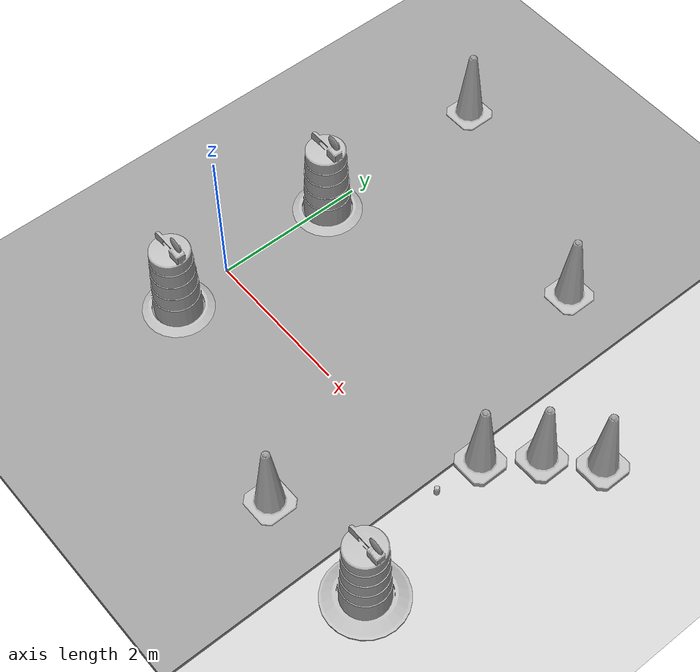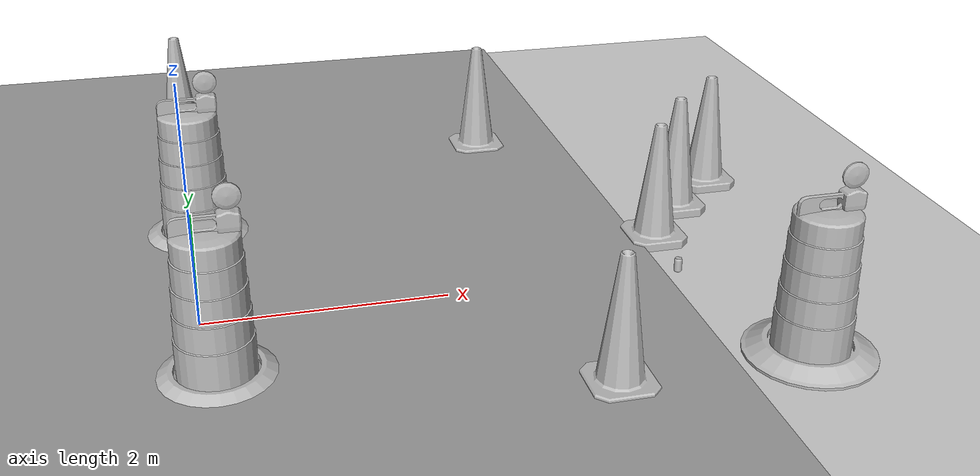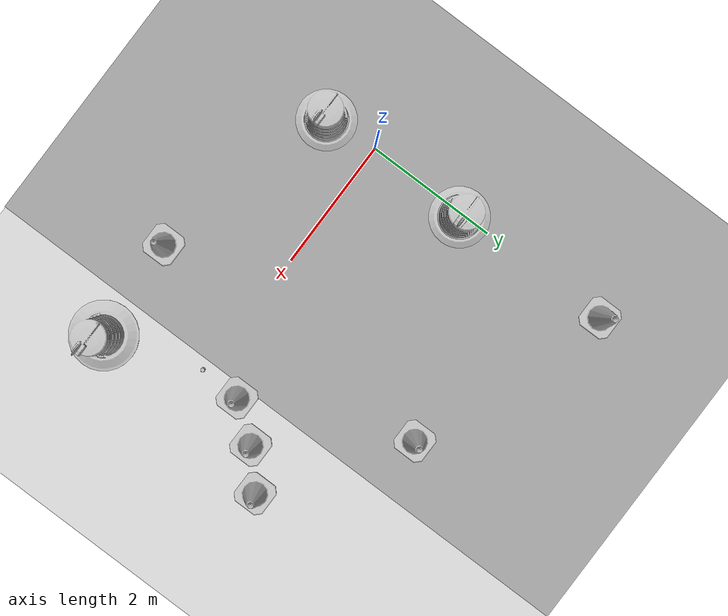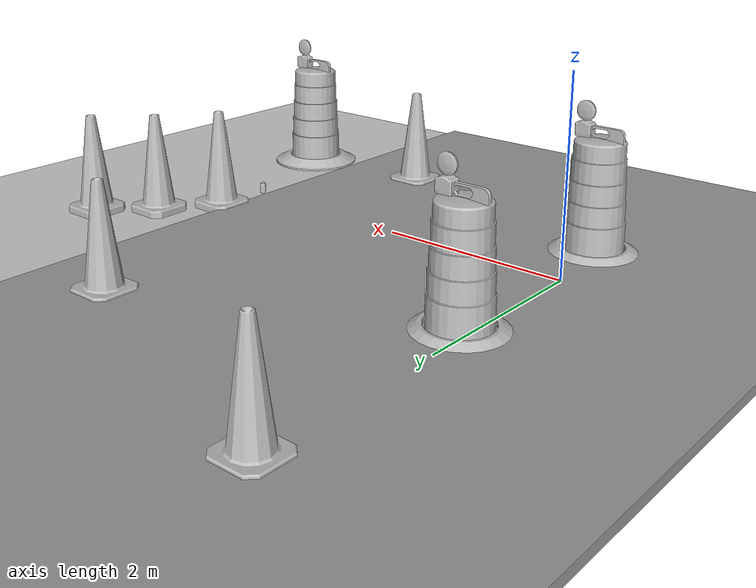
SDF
<sdf version="1.7">
 <world name="default">
  <light name="sun" type="directional">
   <pose>0 0 10 0 -0 0</pose>
   <diffuse>0.8 0.8 0.8 1</diffuse>
   <specular>0.2 0.2 0.2 1</specular>
   <attenuation>
    <range>1000</range>
    <constant>0.9</constant>
    <linear>0.01</linear>
    <quadratic>0.001</quadratic>
   </attenuation>
   <direction>-0.5 0.1 -0.9</direction>
   <spot><inner_angle>0</inner_angle><outer_angle>0</outer_angle><falloff>0</falloff></spot>
  </light>
  <model name="ground_plane">
   <static>1</static>
   <link name="link">
    <collision name="collision">
     <geometry><plane><normal>0 0 1</normal><size>100 100</size></plane></geometry>
     <surface>
      <contact><collide_bitmask>65535</collide_bitmask></contact>
      <friction><ode><mu>100</mu><mu2>50</mu2></ode></friction>
     </surface>
    </collision>
    <visual name="visual">
     <cast_shadows>0</cast_shadows>
     <geometry><plane><normal>0 0 1</normal><size>100 100</size></plane></geometry>
     <material>
      <script><uri>file://media/materials/scripts/gazebo.material</uri><name>Gazebo/Grey</name></script>
     </material>
    </visual>
   </link>
  </model>
  <gravity>0 0 -9.8</gravity>
  <magnetic_field>6e-06 2.3e-05 -4.2e-05</magnetic_field>
  <atmosphere type="adiabatic"/>
  <physics type="ode">
   <max_step_size>0.001</max_step_size>
   <real_time_factor>1</real_time_factor>
   <real_time_update_rate>1000</real_time_update_rate>
  </physics>
  <scene><ambient>0.4 0.4 0.4 1</ambient><background>0.7 0.7 0.7 1</background><shadows>1</shadows></scene>
  <audio><device>default</device></audio>
  <spherical_coordinates>
   <surface_model>EARTH_WGS84</surface_model>
   <latitude_deg>0</latitude_deg>
   <longitude_deg>0</longitude_deg>
   <elevation>0</elevation>
   <heading_deg>0</heading_deg>
  </spherical_coordinates>
  <model name="ground_plane_0">
   <static>1</static>
   <link name="link">
    <collision name="collision">
     <geometry><plane><normal>0 0 1</normal><size>100 100</size></plane></geometry>
     <surface>
      <contact><collide_bitmask>65535</collide_bitmask></contact>
      <friction><ode><mu>100</mu><mu2>50</mu2></ode></friction>
     </surface>
    </collision>
    <visual name="visual">
     <cast_shadows>0</cast_shadows>
     <geometry><plane><normal>0 0 1</normal><size>100 100</size></plane></geometry>
     <material>
      <script><uri>file://media/materials/scripts/gazebo.material</uri><name>Gazebo/Grey</name></script>
     </material>
    </visual>
   </link>
   <pose>-46.1629 36.1434 0 0 -0 0</pose>
  </model>
  <model name="Construction Barrel">
   <link name="link">
    <inertial>
     <pose>0 0 0.4 0 -0 0</pose>
     <mass>500</mass>
     <inertia><ixx>51.2096</ixx><iyy>51.2096</iyy><izz>25</izz><ixy>0</ixy><ixz>0</ixz><iyz>0</iyz></inertia>
    </inertial>
    <collision name="collision">
     <geometry><mesh><uri>model://construction_barrel/meshes/construction_barrel.dae</uri></mesh></geometry>
    </collision>
    <visual name="visual">
     <geometry><mesh><uri>model://construction_barrel/meshes/construction_barrel.dae</uri></mesh></geometry>
    </visual>
   </link>
   <pose>0.100333 -0.792543 -1e-06 1e-06 -1e-06 -9.2e-05</pose>
  </model>
  <model name="Construction Cone">
   <link name="link">
    <collision name="collision">
     <geometry>
      <mesh><scale>10 10 10</scale><uri>model://construction_cone/meshes/construction_cone.dae</uri></mesh>
     </geometry>
    </collision>
    <visual name="visual">
     <geometry>
      <mesh><scale>10 10 10</scale><uri>model://construction_cone/meshes/construction_cone.dae</uri></mesh>
     </geometry>
    </visual>
    <inertial>
     <inertia><ixx>1</ixx><ixy>0</ixy><ixz>0</ixz><iyy>1</iyy><iyz>0</iyz><izz>1</izz></inertia>
     <mass>1</mass>
    </inertial>
   </link>
   <pose>0 4 -0 0 -0 0</pose>
  </model>
  <model name="Construction Barrel_0">
   <link name="link">
    <inertial>
     <pose>0 0 0.4 0 -0 0</pose>
     <mass>500</mass>
     <inertia><ixx>51.2096</ixx><iyy>51.2096</iyy><izz>25</izz><ixy>0</ixy><ixz>0</ixz><iyz>0</iyz></inertia>
    </inertial>
    <collision name="collision">
     <geometry><mesh><uri>model://construction_barrel/meshes/construction_barrel.dae</uri></mesh></geometry>
    </collision>
    <visual name="visual">
     <geometry><mesh><uri>model://construction_barrel/meshes/construction_barrel.dae</uri></mesh></geometry>
    </visual>
   </link>
   <pose>0.061449 1.54605 -1e-06 1e-06 -1e-06 -7.6e-05</pose>
  </model>
  <model name="Construction Cone_0">
   <link name="link">
    <collision name="collision">
     <geometry>
      <mesh><scale>10 10 10</scale><uri>model://construction_cone/meshes/construction_cone.dae</uri></mesh>
     </geometry>
    </collision>
    <visual name="visual">
     <geometry>
      <mesh><scale>10 10 10</scale><uri>model://construction_cone/meshes/construction_cone.dae</uri></mesh>
     </geometry>
    </visual>
    <inertial>
     <inertia><ixx>1</ixx><ixy>0</ixy><ixz>0</ixz><iyy>1</iyy><iyz>0</iyz><izz>1</izz></inertia>
     <mass>1</mass>
    </inertial>
   </link>
   <pose>2.90633 -1.56953 -0 0 -0 0</pose>
  </model>
  <model name="coke_can">
   <link name="link">
    <inertial>
     <pose>0 0 0.06 0 -0 0</pose>
     <mass>0.39</mass>
     <inertia>
      <ixx>0.00055575</ixx>
      <ixy>0</ixy>
      <ixz>0</ixz>
      <iyy>0.00055575</iyy>
      <iyz>0</iyz>
      <izz>0.0001755</izz>
     </inertia>
    </inertial>
    <collision name="collision">
     <pose>0.003937 0.004724 -0.18 0 -0 0</pose>
     <geometry><mesh><uri>model://coke_can/meshes/coke_can.dae</uri></mesh></geometry>
     <surface>
      <friction><ode><mu>1</mu><mu2>1</mu2></ode></friction>
      <contact><ode><kp>1e+07</kp><kd>1</kd><min_depth>0.001</min_depth><max_vel>0.1</max_vel></ode></contact>
     </surface>
    </collision>
    <visual name="visual">
     <pose>0.003937 0.004724 -0.18 0 -0 0</pose>
     <geometry><mesh><uri>model://coke_can/meshes/coke_can.dae</uri></mesh></geometry>
    </visual>
   </link>
   <pose>3.98849 -0.055324 -0.002677 -0.039841 0.000688 0.000246</pose>
  </model>
  <model name="Construction Cone_1">
   <link name="link">
    <collision name="collision">
     <geometry>
      <mesh><scale>10 10 10</scale><uri>model://construction_cone/meshes/construction_cone.dae</uri></mesh>
     </geometry>
    </collision>
    <visual name="visual">
     <geometry>
      <mesh><scale>10 10 10</scale><uri>model://construction_cone/meshes/construction_cone.dae</uri></mesh>
     </geometry>
    </visual>
    <inertial>
     <inertia><ixx>1</ixx><ixy>0</ixy><ixz>0</ixz><iyy>1</iyy><iyz>0</iyz><izz>1</izz></inertia>
     <mass>1</mass>
    </inertial>
   </link>
   <pose>4.01618 0.574124 -0 0 -0 0</pose>
  </model>
  <model name="Construction Cone_2">
   <link name="link">
    <collision name="collision">
     <geometry>
      <mesh><scale>10 10 10</scale><uri>model://construction_cone/meshes/construction_cone.dae</uri></mesh>
     </geometry>
    </collision>
    <visual name="visual">
     <geometry>
      <mesh><scale>10 10 10</scale><uri>model://construction_cone/meshes/construction_cone.dae</uri></mesh>
     </geometry>
    </visual>
    <inertial>
     <inertia><ixx>1</ixx><ixy>0</ixy><ixz>0</ixz><iyy>1</iyy><iyz>0</iyz><izz>1</izz></inertia>
     <mass>1</mass>
    </inertial>
   </link>
   <pose>4.43483 1.13356 -0 0 -0 0</pose>
  </model>
  <model name="Construction Cone_3">
   <link name="link">
    <collision name="collision">
     <geometry>
      <mesh><scale>10 10 10</scale><uri>model://construction_cone/meshes/construction_cone.dae</uri></mesh>
     </geometry>
    </collision>
    <visual name="visual">
     <geometry>
      <mesh><scale>10 10 10</scale><uri>model://construction_cone/meshes/construction_cone.dae</uri></mesh>
     </geometry>
    </visual>
    <inertial>
     <inertia><ixx>1</ixx><ixy>0</ixy><ixz>0</ixz><iyy>1</iyy><iyz>0</iyz><izz>1</izz></inertia>
     <mass>1</mass>
    </inertial>
   </link>
   <pose>4.944 1.5979 -0 0 -0 0</pose>
  </model>
  <model name="Construction Cone_4">
   <link name="link">
    <collision name="collision">
     <geometry>
      <mesh><scale>10 10 10</scale><uri>model://construction_cone/meshes/construction_cone.dae</uri></mesh>
     </geometry>
    </collision>
    <visual name="visual">
     <geometry>
      <mesh><scale>10 10 10</scale><uri>model://construction_cone/meshes/construction_cone.dae</uri></mesh>
     </geometry>
    </visual>
    <inertial>
     <inertia><ixx>1</ixx><ixy>0</ixy><ixz>0</ixz><iyy>1</iyy><iyz>0</iyz><izz>1</izz></inertia>
     <mass>1</mass>
    </inertial>
   </link>
   <pose>2.981 2.95693 -0 0 -0 0</pose>
  </model>
  <model name="Construction Barrel_1">
   <link name="link">
    <inertial>
     <pose>0 0 0.4 0 -0 0</pose>
     <mass>500</mass>
     <inertia><ixx>51.2096</ixx><iyy>51.2096</iyy><izz>25</izz><ixy>0</ixy><ixz>0</ixz><iyz>0</iyz></inertia>
    </inertial>
    <collision name="collision">
     <geometry><mesh><uri>model://construction_barrel/meshes/construction_barrel.dae</uri></mesh></geometry>
    </collision>
    <visual name="visual">
     <geometry><mesh><uri>model://construction_barrel/meshes/construction_barrel.dae</uri></mesh></geometry>
    </visual>
   </link>
   <pose>4.4533 -1.47787 -1e-06 1e-06 6e-06 -1.8e-05</pose>
  </model>
 </world>
</sdf>
